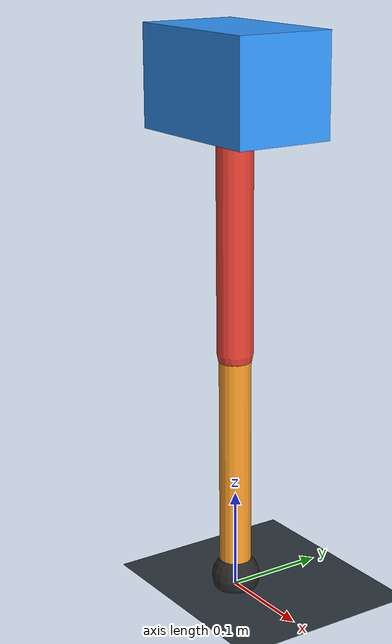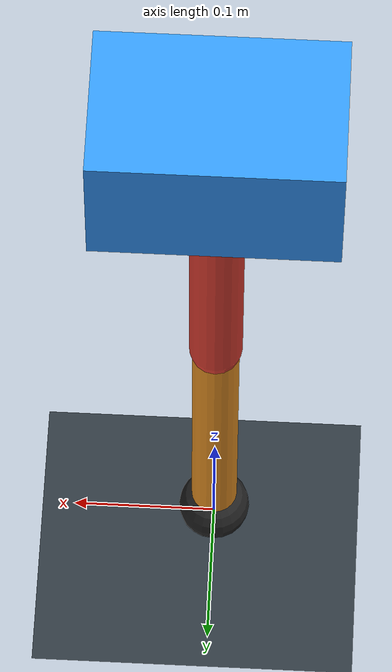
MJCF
<mujoco model="single_axis_two_bar">
  <compiler angle="radian" inertiafromgeom="true"/>
  <option timestep="0.001" integrator="implicitfast" gravity="0 0 -9.81"/>
  <default>
    <joint damping="0.08"/>
    <geom friction="1.2 0.01 0.0001" condim="3"/>
  </default>
  <worldbody>
    <geom name="floor" type="plane" size="5 5 0.1" rgba="0.18 0.22 0.25 1"/>
    <body name="carriage" pos="0 0 0.5138536256196479">
      <joint name="pole_slide" type="slide" axis="0 0 1"/>
      <geom name="payload" type="box" size="0.08 0.05 0.05" mass="3.5852426760889133" rgba="0.2 0.6 1 1"/>
      <body name="thigh" pos="0 0 0">
        <joint name="hip" type="hinge" axis="0 1 0"/>
        <geom name="thigh_link" type="capsule" fromto="0 0 0 0 0 -0.26588418952786147" size="0.018" mass="0.18944599838818882" rgba="0.9 0.25 0.2 1"/>
        <body name="shank" pos="0 0 -0.26588418952786147">
          <joint name="knee" type="hinge" axis="0 1 0"/>
          <geom name="shank_link" type="capsule" fromto="0 0 0 0 0 -0.2380886203893013" size="0.016" mass="0.16964128809092358" rgba="0.95 0.6 0.15 1"/>
          <geom name="foot" type="sphere" pos="0 0 -0.2380886203893013" size="0.025" mass="0.03" rgba="0.15 0.15 0.15 1"/>
          <site name="toe" pos="0 0 -0.2380886203893013" size="0.008"/>
        </body>
      </body>
    </body>
  </worldbody>
  <actuator>
    <motor name="hip_motor" joint="hip" ctrlrange="-34.430179135477985 34.430179135477985"/>
    <motor name="knee_motor" joint="knee" ctrlrange="-14.31932317513545 14.31932317513545"/>
  </actuator>
</mujoco>
